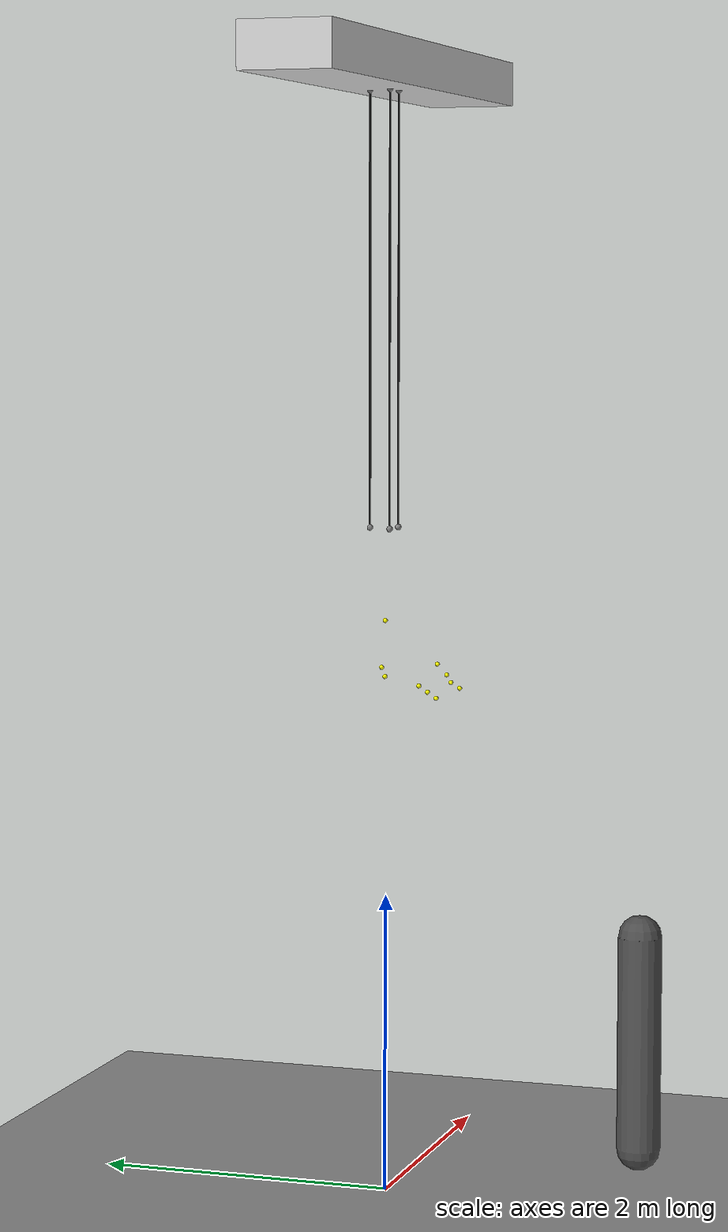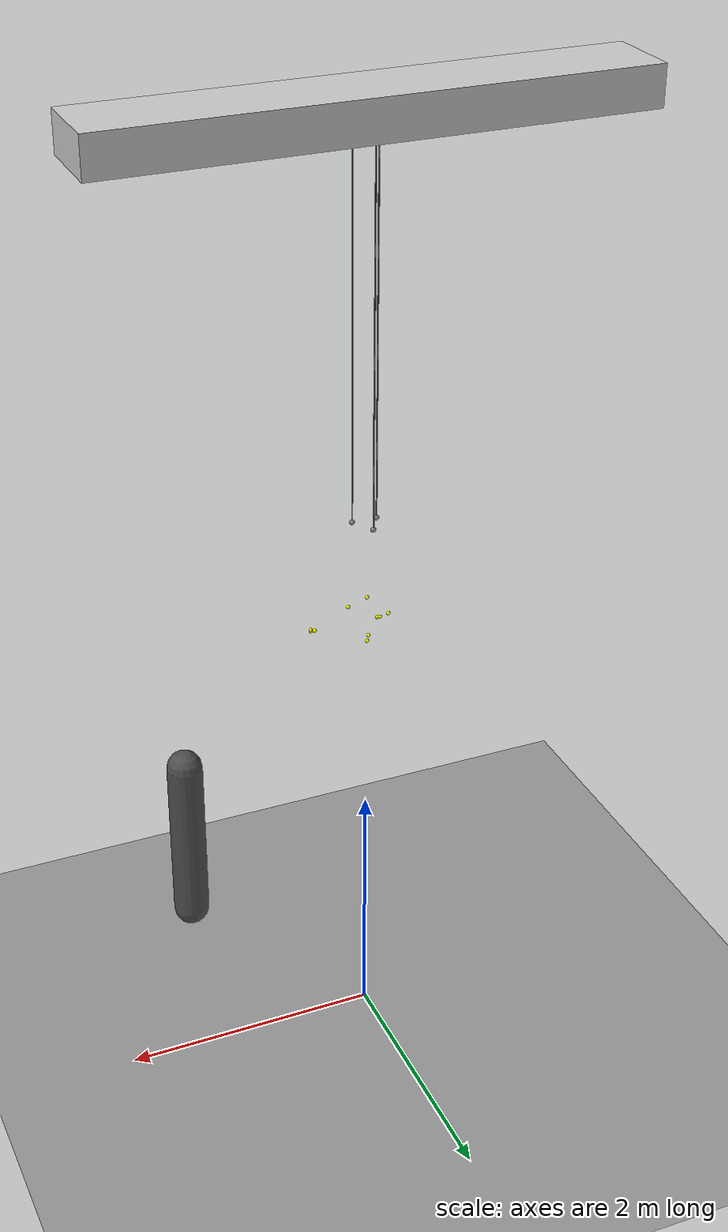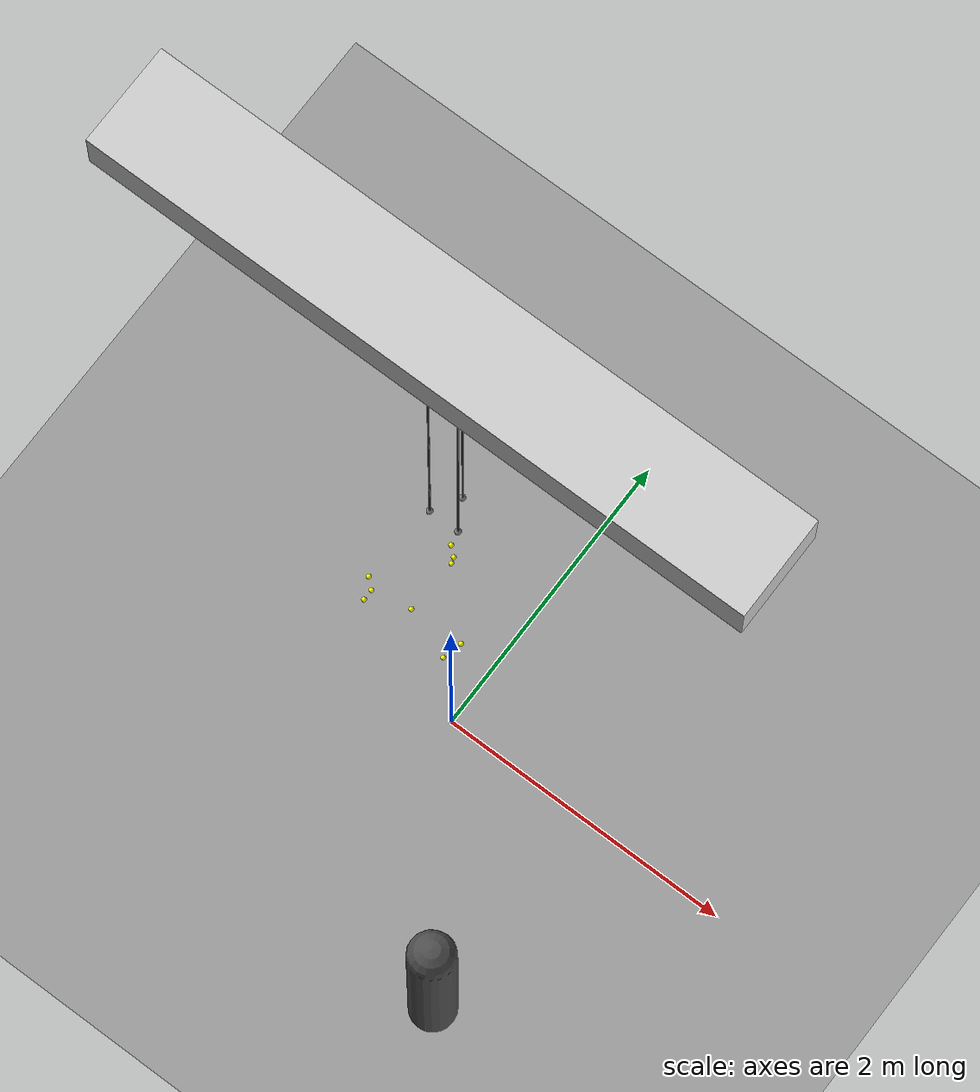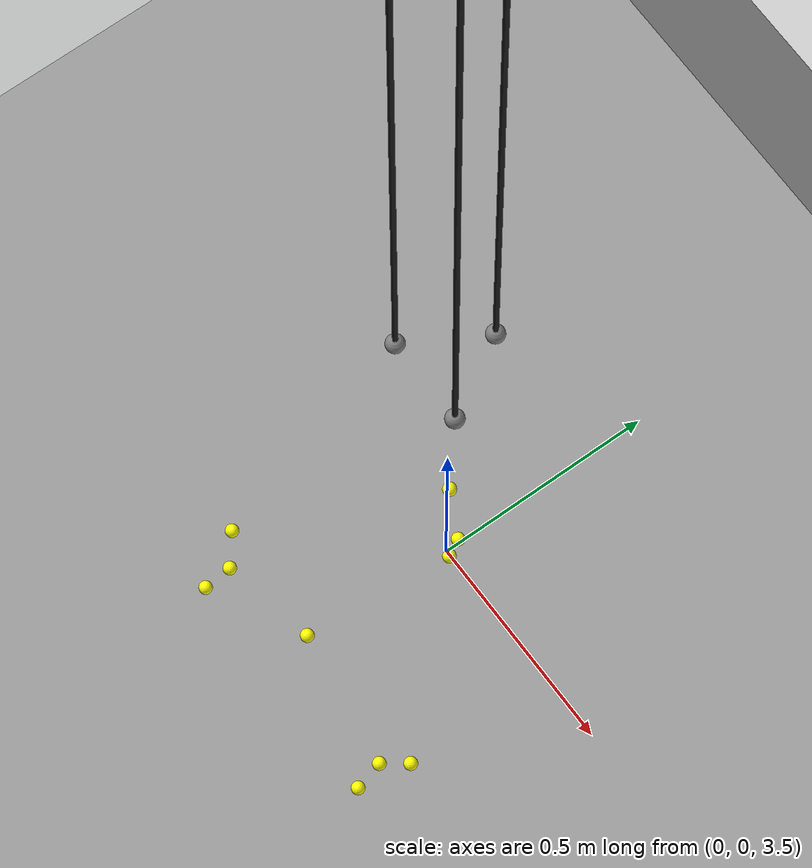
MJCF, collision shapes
<mujoco model="floating_head_1800_wires_R011">
  <compiler angle="radian" meshdir="meshes"/>
  <option timestep="0.0002" gravity="0 0 -9.81" integrator="implicitfast"/>
  <visual><global offwidth="1280" offheight="960"/></visual>
  <asset><mesh name="m_base_0" file="base_0.stl"/><mesh name="m_yaw_0" file="yaw_0.stl"/><mesh name="m_pitch_0" file="pitch_0.stl"/><mesh name="m_eye_pitch_0" file="eye_pitch_0.stl"/><mesh name="m_eye_yaw_l_0" file="eye_yaw_l_0.stl"/><mesh name="m_eye_yaw_r_0" file="eye_yaw_r_0.stl"/><mesh name="m_eyeball_l_0" file="eyeball_l_0.stl"/><mesh name="m_eyeball_r_0" file="eyeball_r_0.stl"/></asset>
  <default><geom contype="0" conaffinity="0" density="0"/></default>
  <worldbody>
    <light pos="0 -3 9" dir="0 0.3 -1"/>
    <geom name="floor" type="plane" size="6 6 0.1" rgba="0.6 0.6 0.6 1"/>
    <geom name="beam" type="box" pos="0 0 7.4460" size="2 0.3 0.15" rgba="0.8 0.8 0.8 1"/>
    <geom name="human" type="capsule" fromto="1.0 -1.5 0.15 1.0 -1.5 1.62" size="0.15" rgba="0.3 0.3 0.3 1"/>
    <site name="ceil0" pos="6.73556e-18 0.11 7.296" size="0.02"/>
    <site name="ceil1" pos="-0.0952628 -0.055 7.296" size="0.02"/>
    <site name="ceil2" pos="0.0952628 -0.055 7.296" size="0.02"/>
    <body name="base" pos="0 0 3.2834">
      <inertial pos="0.00192465 0.00416315 0.553989" mass="26.2499" fullinertia="2.05697 2.09189 0.202685 0.000150812 -0.000487465 0.0266854"/>
      <freejoint name="suspension"/>
      <site name="plate0" pos="6.73556e-18 0.11 1.1658" size="0.02"/>
      <site name="plate1" pos="-0.0952628 -0.055 1.1658" size="0.02"/>
      <site name="plate2" pos="0.0952628 -0.055 1.1658" size="0.02"/>
      <geom type="mesh" mesh="m_base_0" rgba="0.4 0.4 0.45 1"/>
      <site name="com_base" pos="0.00192465 0.00416315 0.553989" size="0.015" rgba="1 1 0 1"/>
      <body name="yaw" pos="0 0 0">
        <inertial pos="0.00045566 0.00656782 0.182508" mass="20.7242" fullinertia="0.381776 0.637848 0.344314 -5.87744e-05 -0.00118726 0.031012"/>
        <joint name="neck_yaw" type="hinge" pos="0 0 0.3103" axis="0 0 1" armature="1.06" damping="2" frictionloss="3"/>
        <geom type="mesh" mesh="m_yaw_0" rgba="0.2 0.45 0.85 1"/>
        <site name="com_yaw" pos="0.00045566 0.00656782 0.182508" size="0.015" rgba="1 1 0 1"/>
        <body name="pitch" pos="0 0 0">
          <inertial pos="-0.000254136 0.0293608 0.242969" mass="325.9920" fullinertia="103.961 95.7393 81.5105 0.0198513 0.00616249 -8.90959"/>
          <joint name="neck_pitch" type="hinge" pos="0 0 0.1688" axis="-1 0 0" armature="2.385" damping="2" frictionloss="3"/>
          <geom type="mesh" mesh="m_pitch_0" rgba="0.85 0.6 0.3 0.55"/>
          <site name="com_pitch" pos="-0.000254136 0.0293608 0.242969" size="0.015" rgba="1 1 0 1"/>
          <body name="eye_pitch" pos="0 0 0">
            <inertial pos="1.44404e-17 -0.354435 0.276964" mass="0.4805" fullinertia="0.000144385 0.013183 0.0130801 6.46589e-10 5.35339e-11 8.57782e-06"/>
            <joint name="eye_pitch" type="hinge" pos="0 -0.355 0.2838" axis="1 0 0" armature="0.143485" damping="0.02" frictionloss="0.05"/>
            <geom type="mesh" mesh="m_eye_pitch_0" rgba="0.2 0.75 0.3 1"/>
            <site name="com_eye_pitch" pos="1.44404e-17 -0.354435 0.276964" size="0.015" rgba="1 1 0 1"/>
          </body>
          <body name="eye_yaw_l" pos="0 0 0">
            <inertial pos="0.318626 -0.324597 0.169092" mass="0.0836" fullinertia="1.20662e-05 0.000118294 0.000120132 -1.42602e-05 2.18407e-06 2.86478e-07"/>
            <joint name="eye_yaw_l" type="hinge" pos="0.2625 -0.3241 0.1585" axis="0 -0.559215 0.829023" armature="0.250883" damping="0.02" frictionloss="0.05"/>
            <geom type="mesh" mesh="m_eye_yaw_l_0" rgba="0.85 0.2 0.2 1"/>
            <site name="com_eye_yaw_l" pos="0.318626 -0.324597 0.169092" size="0.015" rgba="1 1 0 1"/>
          </body>
          <body name="eye_yaw_r" pos="0 0 0">
            <inertial pos="-0.318626 -0.324596 0.169093" mass="0.0836" fullinertia="1.20659e-05 0.000118294 0.000120132 1.42588e-05 -2.18503e-06 2.86616e-07"/>
            <joint name="eye_yaw_r" type="hinge" pos="-0.2625 -0.3241 0.1585" axis="0 -0.559215 0.829023" armature="0.250883" damping="0.02" frictionloss="0.05"/>
            <geom type="mesh" mesh="m_eye_yaw_r_0" rgba="0.85 0.2 0.6 1"/>
            <site name="com_eye_yaw_r" pos="-0.318626 -0.324596 0.169093" size="0.015" rgba="1 1 0 1"/>
          </body>
          <body name="eyeball_pitch_l" pos="0 0 0">
            <inertial pos="0.268 -0.3683 0.1244" mass="0.0100" fullinertia="1e-06 1e-06 1e-06 0 0 0"/>
            <joint name="eyeball_pitch_l" type="hinge" pos="0.268 -0.3683 0.1244" axis="-0.995194 -0.0810158 -0.0550107" damping="0.001"/>
            <site name="com_eyeball_pitch_l" pos="0.268 -0.3683 0.1244" size="0.015" rgba="1 1 0 1"/>
            <body name="eyeball_l" pos="0 0 0">
              <inertial pos="0.274813 -0.42754 0.0873051" mass="20.1981" fullinertia="0.11114 0.210295 0.188125 -0.00952797 -0.00631169 0.0250332"/>
              <joint name="eyeball_yaw_l" type="hinge" pos="0.268 -0.3683 0.1244" axis="0 -0.559215 0.829023" damping="0.001"/>
              <geom type="mesh" mesh="m_eyeball_l_0" rgba="0.9 0.9 0.85 1"/>
              <site name="com_eyeball_l" pos="0.274813 -0.42754 0.0873051" size="0.015" rgba="1 1 0 1"/>
            </body>
          </body>
          <body name="eyeball_pitch_r" pos="0 0 0">
            <inertial pos="-0.268 -0.3683 0.1244" mass="0.0100" fullinertia="1e-06 1e-06 1e-06 0 0 0"/>
            <joint name="eyeball_pitch_r" type="hinge" pos="-0.268 -0.3683 0.1244" axis="-0.995194 0.0810158 0.0550107" damping="0.001"/>
            <site name="com_eyeball_pitch_r" pos="-0.268 -0.3683 0.1244" size="0.015" rgba="1 1 0 1"/>
            <body name="eyeball_r" pos="0 0 0">
              <inertial pos="-0.274813 -0.42754 0.087305" mass="20.1981" fullinertia="0.11114 0.210296 0.188124 0.00951965 0.00632303 0.0250327"/>
              <joint name="eyeball_yaw_r" type="hinge" pos="-0.268 -0.3683 0.1244" axis="0 -0.559215 0.829023" damping="0.001"/>
              <geom type="mesh" mesh="m_eyeball_r_0" rgba="0.9 0.9 0.85 1"/>
              <site name="com_eyeball_r" pos="-0.274813 -0.42754 0.087305" size="0.015" rgba="1 1 0 1"/>
            </body>
          </body>
        </body>
      </body>
    </body>
  </worldbody>
  <tendon>
    <spatial name="wire0" limited="true" range="0 2.84730" solreflimit="0.004 1" width="0.006" rgba="0.1 0.1 0.1 1"><site site="ceil0"/><site site="plate0"/></spatial>
    <spatial name="wire1" limited="true" range="0 2.84730" solreflimit="0.004 1" width="0.006" rgba="0.1 0.1 0.1 1"><site site="ceil1"/><site site="plate1"/></spatial>
    <spatial name="wire2" limited="true" range="0 2.84730" solreflimit="0.004 1" width="0.006" rgba="0.1 0.1 0.1 1"><site site="ceil2"/><site site="plate2"/></spatial>
  </tendon>
  <equality>
    <joint name="link_eyeball_pitch_l" joint1="eyeball_pitch_l" joint2="eye_pitch" polycoef="0 0.560005 0.10257 -0.257375 0" solref="0.002 1"/>
    <joint name="link_eyeball_yaw_l" joint1="eyeball_yaw_l" joint2="eye_yaw_l" polycoef="0 0.955431 -0.0486467 -0.00408892 0" solref="0.002 1"/>
    <joint name="link_eyeball_pitch_r" joint1="eyeball_pitch_r" joint2="eye_pitch" polycoef="0 0.560005 0.10257 -0.257375 0" solref="0.002 1"/>
    <joint name="link_eyeball_yaw_r" joint1="eyeball_yaw_r" joint2="eye_yaw_r" polycoef="0 0.955431 -0.0486467 -0.00408892 0" solref="0.002 1"/>
  </equality>
  <actuator>
    <motor name="act_neck_yaw" joint="neck_yaw" ctrlrange="-644.400 644.400" ctrllimited="true"/>
    <motor name="act_neck_pitch" joint="neck_pitch" ctrlrange="-966.600 966.600" ctrllimited="true"/>
    <motor name="act_eye_pitch" joint="eye_pitch" ctrlrange="-42.750 42.750" ctrllimited="true"/>
    <motor name="act_eye_yaw_l" joint="eye_yaw_l" ctrlrange="-15.120 15.120" ctrllimited="true"/>
    <motor name="act_eye_yaw_r" joint="eye_yaw_r" ctrlrange="-15.120 15.120" ctrllimited="true"/>
  </actuator>
</mujoco>
